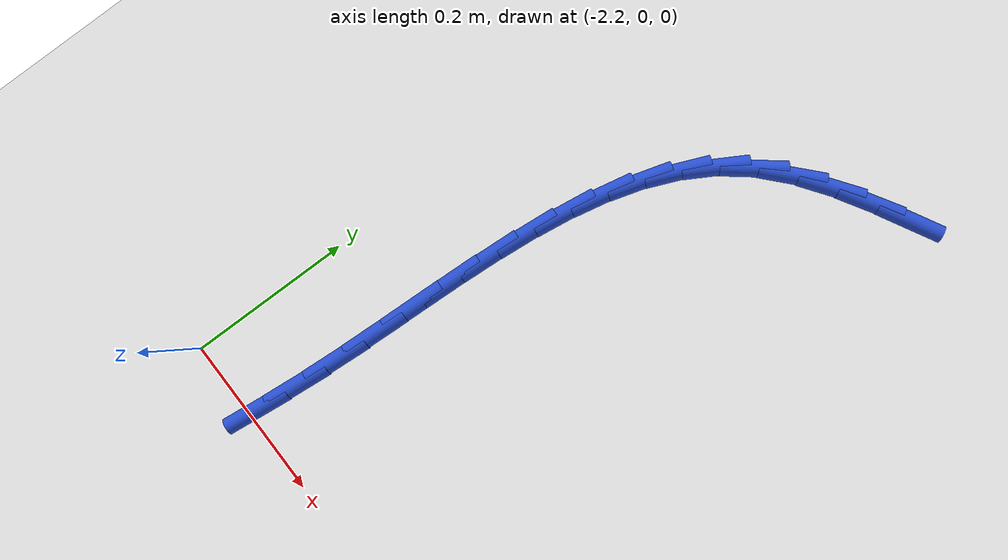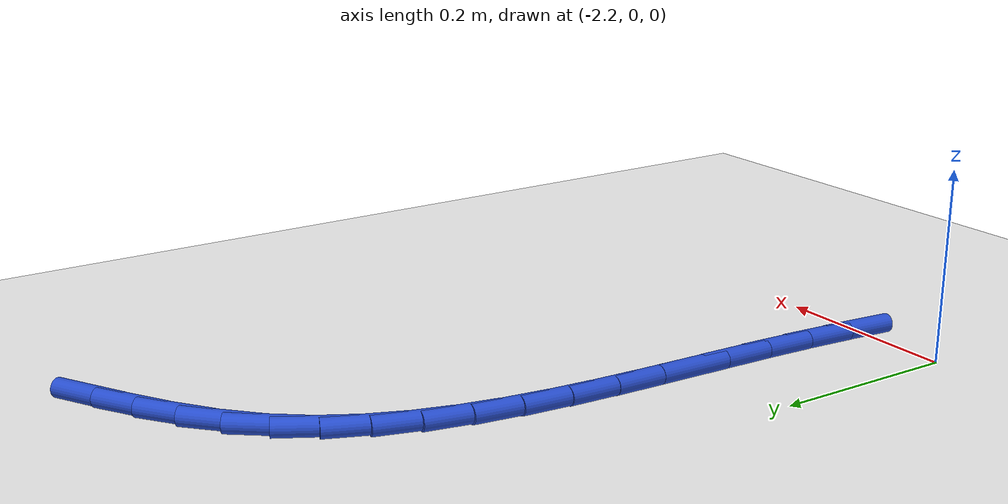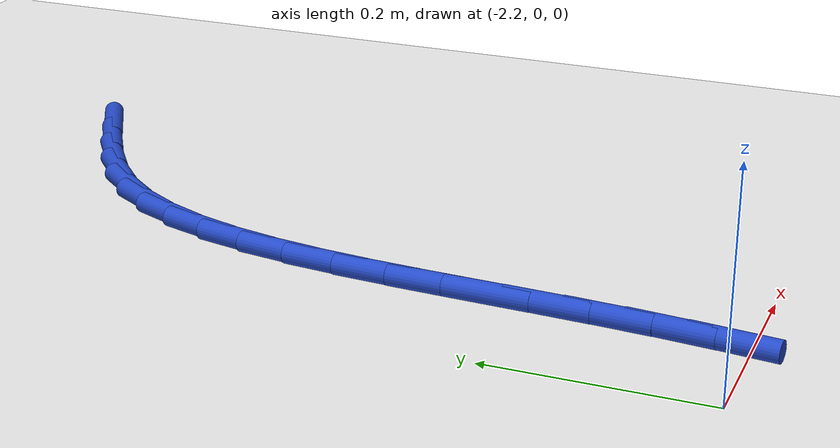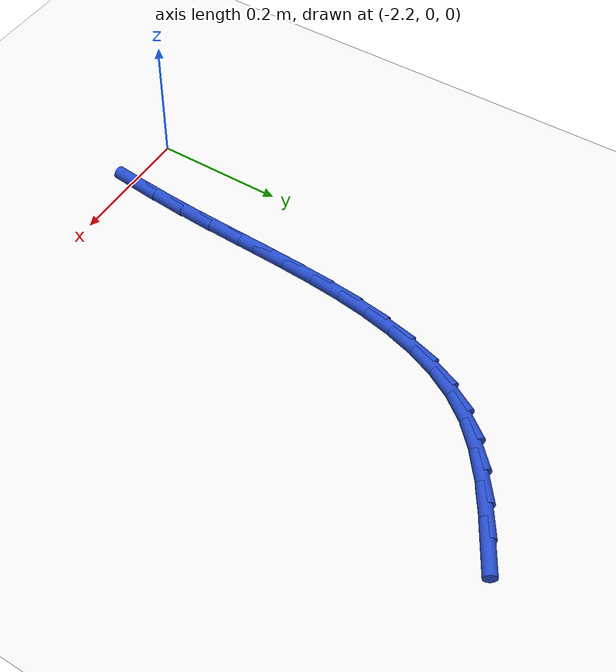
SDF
<sdf version="1.6">
 <world name="default">
  <model name="ground_plane">
   <static>1</static>
   <link name="link">
    <collision name="collision">
     <geometry><plane><normal>0 0 1</normal><size>100 100</size></plane></geometry>
     <surface><friction><ode><mu>100</mu><mu2>50</mu2></ode></friction></surface>
    </collision>
    <visual name="visual">
     <cast_shadows>0</cast_shadows>
     <geometry><plane><normal>0 0 1</normal><size>100 100</size></plane></geometry>
     <material>
      <script><uri>file://media/materials/scripts/gazebo.material</uri><name>Gazebo/WhiteGlow</name></script>
     </material>
    </visual>
   </link>
  </model>
  <model name="line">
   <link name="link_52">
    <pose>-1.8323872787598143 0.7464293096140207 0.01 0 1.57 0.5141889459597901</pose>
    <collision name="collision">
     <geometry><cylinder><radius>0.01</radius><length>0.08</length></cylinder></geometry>
    </collision>
    <visual name="visual">
     <material>
      <script><name>Gazebo/Blue</name><uri>file://media/materials/scripts/gazebo.material</uri></script>
     </material>
     <geometry><cylinder><radius>0.01</radius><length>0.08</length></cylinder></geometry>
    </visual>
   </link>
   <link name="link_53">
    <pose>-1.8757851592793289 0.7219150942970263 0.01 0 1.57 0.5604719948466994</pose>
    <collision name="collision">
     <geometry><cylinder><radius>0.01</radius><length>0.08</length></cylinder></geometry>
    </collision>
    <visual name="visual">
     <material>
      <script><name>Gazebo/Blue</name><uri>file://media/materials/scripts/gazebo.material</uri></script>
     </material>
     <geometry><cylinder><radius>0.01</radius><length>0.08</length></cylinder></geometry>
    </visual>
   </link>
   <link name="link_54">
    <pose>-1.9168015013369646 0.6961729406707647 0.01 0 1.57 0.6392935034693884</pose>
    <collision name="collision">
     <geometry><cylinder><radius>0.01</radius><length>0.08</length></cylinder></geometry>
    </collision>
    <visual name="visual">
     <material>
      <script><name>Gazebo/Blue</name><uri>file://media/materials/scripts/gazebo.material</uri></script>
     </material>
     <geometry><cylinder><radius>0.01</radius><length>0.08</length></cylinder></geometry>
    </visual>
   </link>
   <link name="link_55">
    <pose>-1.9542682134708709 0.6683184536726715 0.01 0 1.57 0.755567876876201</pose>
    <collision name="collision">
     <geometry><cylinder><radius>0.01</radius><length>0.08</length></cylinder></geometry>
    </collision>
    <visual name="visual">
     <material>
      <script><name>Gazebo/Blue</name><uri>file://media/materials/scripts/gazebo.material</uri></script>
     </material>
     <geometry><cylinder><radius>0.01</radius><length>0.08</length></cylinder></geometry>
    </visual>
   </link>
   <link name="link_56">
    <pose>-1.9870172042191947 0.6374672382401821 0.01 0 1.57 0.9059892556153714</pose>
    <collision name="collision">
     <geometry><cylinder><radius>0.01</radius><length>0.08</length></cylinder></geometry>
    </collision>
    <visual name="visual">
     <material>
      <script><name>Gazebo/Blue</name><uri>file://media/materials/scripts/gazebo.material</uri></script>
     </material>
     <geometry><cylinder><radius>0.01</radius><length>0.08</length></cylinder></geometry>
    </visual>
   </link>
   <link name="link_57">
    <pose>-2.0141143510012847 0.6028973360371297 0.01 0 1.57 1.053774161450152</pose>
    <collision name="collision">
     <geometry><cylinder><radius>0.01</radius><length>0.08</length></cylinder></geometry>
    </collision>
    <visual name="visual">
     <material>
      <script><name>Gazebo/Blue</name><uri>file://media/materials/scripts/gazebo.material</uri></script>
     </material>
     <geometry><cylinder><radius>0.01</radius><length>0.08</length></cylinder></geometry>
    </visual>
   </link>
   <link name="link_58">
    <pose>-2.0358234224170753 0.5647184442917905 0.01 0 1.57 1.181949540184219</pose>
    <collision name="collision">
     <geometry><cylinder><radius>0.01</radius><length>0.08</length></cylinder></geometry>
    </collision>
    <visual name="visual">
     <material>
      <script><name>Gazebo/Blue</name><uri>file://media/materials/scripts/gazebo.material</uri></script>
     </material>
     <geometry><cylinder><radius>0.01</radius><length>0.08</length></cylinder></geometry>
    </visual>
   </link>
   <link name="link_59">
    <pose>-2.052790530355083 0.5233057083204016 0.01 0 1.57 1.2878568737318823</pose>
    <collision name="collision">
     <geometry><cylinder><radius>0.01</radius><length>0.08</length></cylinder></geometry>
    </collision>
    <visual name="visual">
     <material>
      <script><name>Gazebo/Blue</name><uri>file://media/materials/scripts/gazebo.material</uri></script>
     </material>
     <geometry><cylinder><radius>0.01</radius><length>0.08</length></cylinder></geometry>
    </visual>
   </link>
   <link name="link_60">
    <pose>-2.065661953196362 0.4790343890293742 0.01 0 1.57 1.371939230554957</pose>
    <collision name="collision">
     <geometry><cylinder><radius>0.01</radius><length>0.08</length></cylinder></geometry>
    </collision>
    <visual name="visual">
     <material>
      <script><name>Gazebo/Blue</name><uri>file://media/materials/scripts/gazebo.material</uri></script>
     </material>
     <geometry><cylinder><radius>0.01</radius><length>0.08</length></cylinder></geometry>
    </visual>
   </link>
   <link name="link_61">
    <pose>-2.0750839693219714 0.4322797473251194 0.01 0 1.57 1.436156944812052</pose>
    <collision name="collision">
     <geometry><cylinder><radius>0.01</radius><length>0.08</length></cylinder></geometry>
    </collision>
    <visual name="visual">
     <material>
      <script><name>Gazebo/Blue</name><uri>file://media/materials/scripts/gazebo.material</uri></script>
     </material>
     <geometry><cylinder><radius>0.01</radius><length>0.08</length></cylinder></geometry>
    </visual>
   </link>
   <link name="link_62">
    <pose>-2.0817028571129654 0.38341704411404876 0.01 0 1.57 1.482833498422117</pose>
    <collision name="collision">
     <geometry><cylinder><radius>0.01</radius><length>0.08</length></cylinder></geometry>
    </collision>
    <visual name="visual">
     <material>
      <script><name>Gazebo/Blue</name><uri>file://media/materials/scripts/gazebo.material</uri></script>
     </material>
     <geometry><cylinder><radius>0.01</radius><length>0.08</length></cylinder></geometry>
    </visual>
   </link>
   <link name="link_63">
    <pose>-2.086164894950404 0.33282154030257316 0.01 0 1.57 1.5140470584801262</pose>
    <collision name="collision">
     <geometry><cylinder><radius>0.01</radius><length>0.08</length></cylinder></geometry>
    </collision>
    <visual name="visual">
     <material>
      <script><name>Gazebo/Blue</name><uri>file://media/materials/scripts/gazebo.material</uri></script>
     </material>
     <geometry><cylinder><radius>0.01</radius><length>0.08</length></cylinder></geometry>
    </visual>
   </link>
   <link name="link_64">
    <pose>-2.0891163612153423 0.28086849679710446 0.01 0 1.57 1.531387999802183</pose>
    <collision name="collision">
     <geometry><cylinder><radius>0.01</radius><length>0.08</length></cylinder></geometry>
    </collision>
    <visual name="visual">
     <material>
      <script><name>Gazebo/Blue</name><uri>file://media/materials/scripts/gazebo.material</uri></script>
     </material>
     <geometry><cylinder><radius>0.01</radius><length>0.08</length></cylinder></geometry>
    </visual>
   </link>
   <link name="link_65">
    <pose>-2.0912035342888378 0.22793317450405343 0.01 0 1.57 1.5359005882772656</pose>
    <collision name="collision">
     <geometry><cylinder><radius>0.01</radius><length>0.08</length></cylinder></geometry>
    </collision>
    <visual name="visual">
     <material>
      <script><name>Gazebo/Blue</name><uri>file://media/materials/scripts/gazebo.material</uri></script>
     </material>
     <geometry><cylinder><radius>0.01</radius><length>0.08</length></cylinder></geometry>
    </visual>
   </link>
   <link name="link_66">
    <pose>-2.093072692551947 0.17439083432983082 0.01 0 1.57 1.5280987148735161</pose>
    <collision name="collision">
     <geometry><cylinder><radius>0.01</radius><length>0.08</length></cylinder></geometry>
    </collision>
    <visual name="visual">
     <material>
      <script><name>Gazebo/Blue</name><uri>file://media/materials/scripts/gazebo.material</uri></script>
     </material>
     <geometry><cylinder><radius>0.01</radius><length>0.08</length></cylinder></geometry>
    </visual>
   </link>
   <link name="link_67">
    <pose>-2.095370114385727 0.12061673718084891 0.01 0 1.57 1.508068709074419</pose>
    <collision name="collision">
     <geometry><cylinder><radius>0.01</radius><length>0.08</length></cylinder></geometry>
    </collision>
    <visual name="visual">
     <material>
      <script><name>Gazebo/Blue</name><uri>file://media/materials/scripts/gazebo.material</uri></script>
     </material>
     <geometry><cylinder><radius>0.01</radius><length>0.08</length></cylinder></geometry>
    </visual>
   </link>
   <link name="link_68">
    <pose>-2.0987387020951562 0.06698536260825867 0.01 0 1.57 1.4826363617765324</pose>
    <collision name="collision">
     <geometry><cylinder><radius>0.01</radius><length>0.08</length></cylinder></geometry>
    </collision>
    <visual name="visual">
     <material>
      <script><name>Gazebo/Blue</name><uri>file://media/materials/scripts/gazebo.material</uri></script>
     </material>
     <geometry><cylinder><radius>0.01</radius><length>0.08</length></cylinder></geometry>
    </visual>
   </link>
   <link name="link_69">
    <pose>-2.1034411916397686 0.013783204890832809 0.01 0 1.57 1.4652987616519582</pose>
    <collision name="collision">
     <geometry><cylinder><radius>0.01</radius><length>0.08</length></cylinder></geometry>
    </collision>
    <visual name="visual">
     <material>
      <script><name>Gazebo/Blue</name><uri>file://media/materials/scripts/gazebo.material</uri></script>
     </material>
     <geometry><cylinder><radius>0.01</radius><length>0.08</length></cylinder></geometry>
    </visual>
   </link>
  </model>
 </world>
</sdf>
